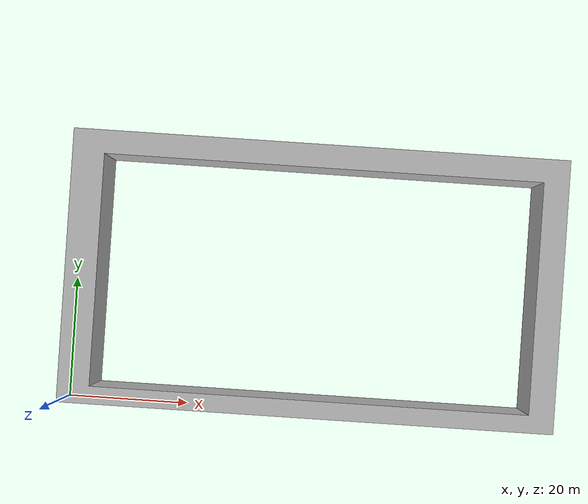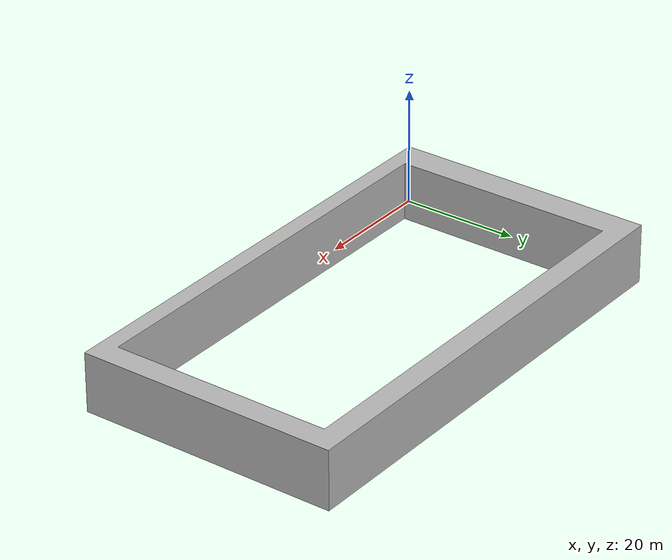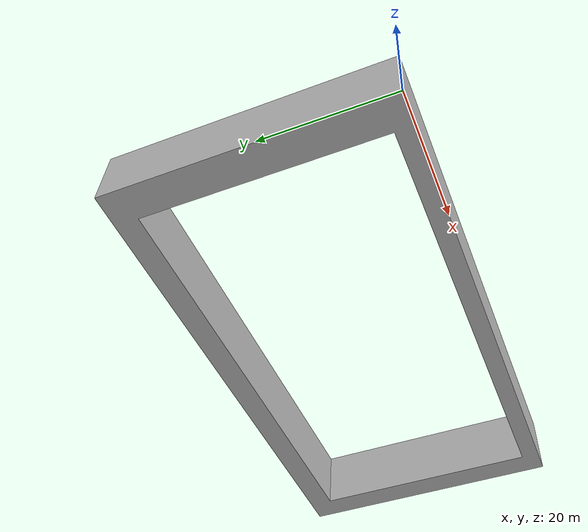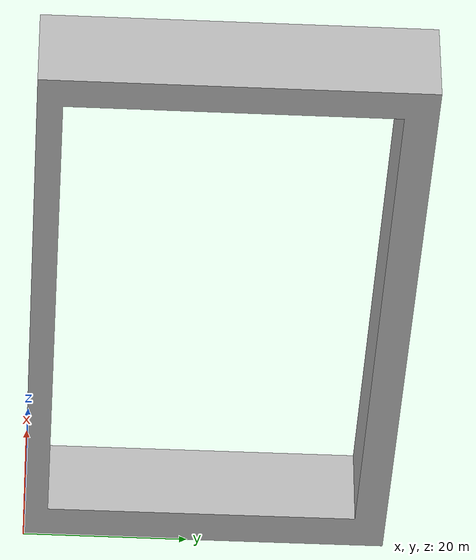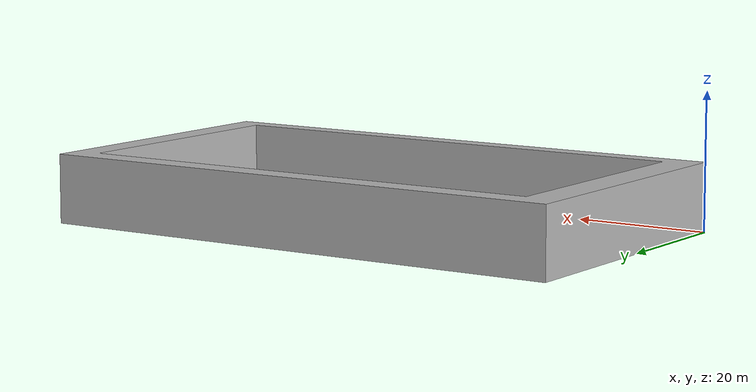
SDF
<?xml version="1.0"?>
<sdf version="1.6">
  <model name="tmp">
    <link name="tmp_link">
      <inertial>
        <mass>0.0564</mass>
        <inertia>
          <ixx>4.1e-05</ixx>
          <ixy>0</ixy>
          <ixz>0</ixz>
          <iyy>5.9e-06</iyy>
          <iyz>0</iyz>
          <izz>5.9e-06</izz>
        </inertia>
      </inertial>
      <self_collide>0</self_collide>
      <kinematic>0</kinematic>
      <gravity>1</gravity>
      <visual name="visual">
        <geometry>
         <mesh>
            <uri>package://realsense_ros_gazebo/sdf/tmp/meshes/tmp.stl</uri>
          </mesh>
        </geometry>
      </visual>
      <collision name='collision'>
        <pose>0 0 0 0 0 0</pose>
        <geometry>
          <box>
            <size>0.02505 0.090 0.025</size>
          </box>
        </geometry>
        <surface>
          <friction>
            <ode>
              <mu>1</mu>
              <mu2>1</mu2>
              <fdir1>0 0 0</fdir1>
              <slip1>0</slip1>
              <slip2>0</slip2>
            </ode>
          </friction>
          <bounce>
            <restitution_coefficient>0</restitution_coefficient>
            <threshold>1e+06</threshold>
          </bounce>
          <contact>
            <collide_without_contact>0</collide_without_contact>
            <collide_without_contact_bitmask>1</collide_without_contact_bitmask>
            <collide_bitmask>1</collide_bitmask>
            <ode>
              <soft_cfm>0</soft_cfm>
              <soft_erp>0.2</soft_erp>
              <kp>1e+13</kp>
              <kd>1</kd>
              <max_vel>0.01</max_vel>
              <min_depth>0</min_depth>
            </ode>
            <bullet>
              <split_impulse>1</split_impulse>
              <split_impulse_penetration_threshold>-0.01</split_impulse_penetration_threshold>
              <soft_cfm>0</soft_cfm>
              <soft_erp>0.2</soft_erp>
              <kp>1e+13</kp>
              <kd>1</kd>
            </bullet>
          </contact>
        </surface>
      </collision>
    </link>
  </model>
</sdf>
